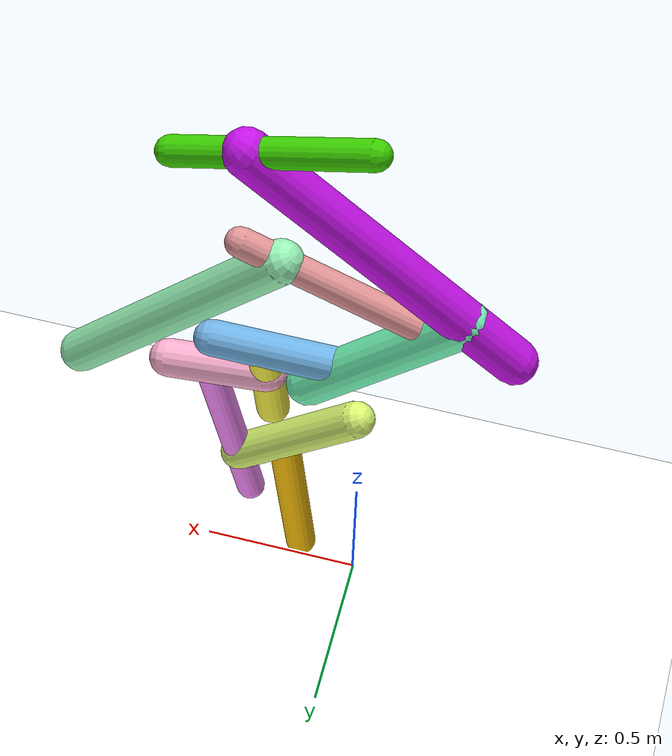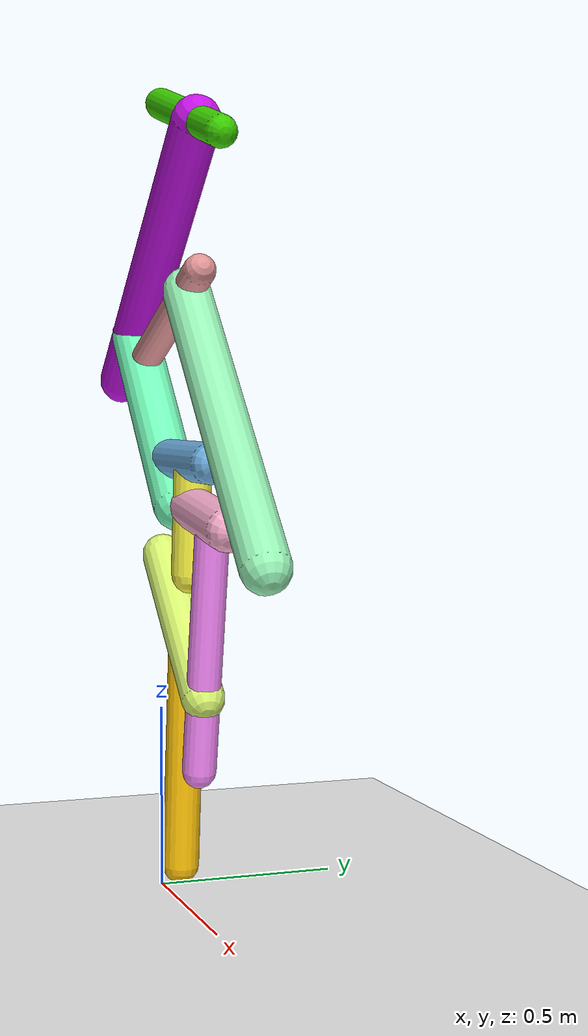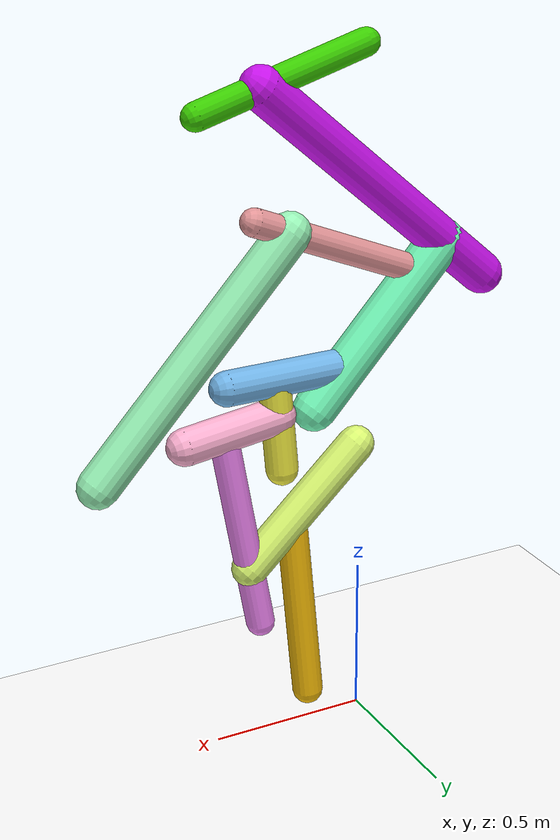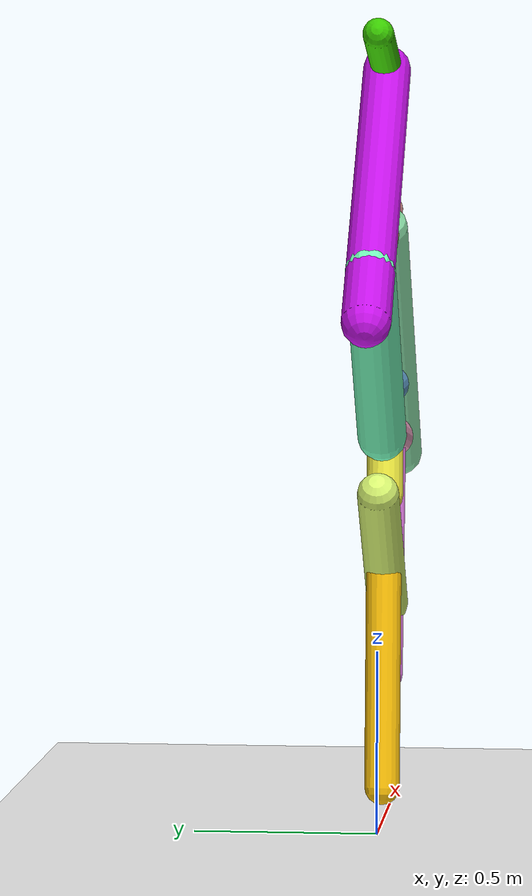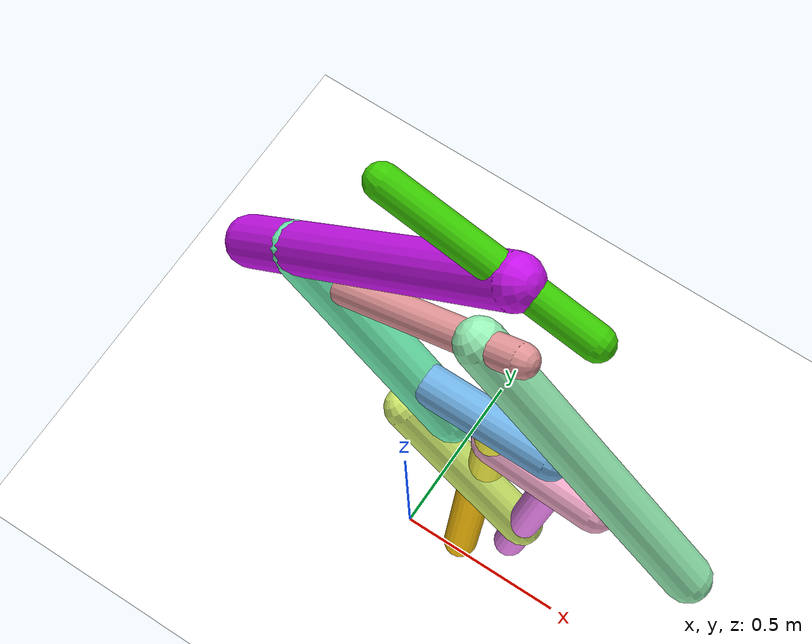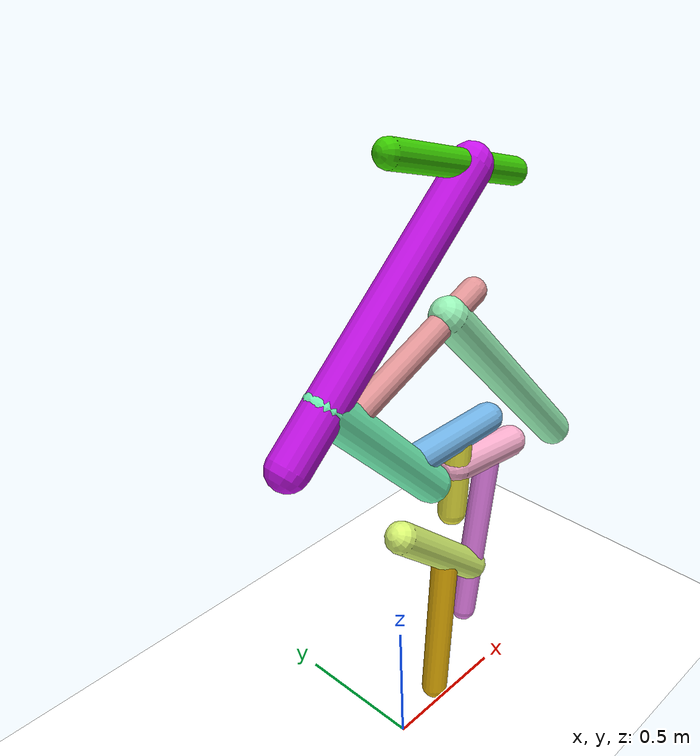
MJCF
<mujoco model="morphology">
  <option timestep="0.01"/>
  <default>
    <default class="/"/>
    <default class="0/"/>
    <default class="0/1/"/>
    <default class="0/1/2/"/>
    <default class="0/1/2/3/"/>
    <default class="0/1/2/3/4/"/>
    <default class="0/1/2/5/"/>
    <default class="0/1/2/5/6/"/>
    <default class="0/1/2/5/6/7/"/>
    <default class="0/1/2/5/6/7/8/"/>
    <default class="0/1/2/5/6/7/8/9/"/>
    <default class="0/1/2/5/6/7/8/9/10/"/>
  </default>
  <asset>
    <texture name="texplane" type="2d" builtin="checker" rgb1="0.10000000000000001 0.20000000000000001 0.29999999999999999" rgb2="0.20000000000000001 0.29999999999999999 0.40000000000000002" width="300" height="300"/>
    <material name="MatPlane" class="/" texture="texplane" texrepeat="20 20" specular="1" shininess="1" reflectance="0.5"/>
  </asset>
  <worldbody>
    <light name="//unnamed_light_0" class="/" directional="true" pos="0 0 1.5" dir="0 0 -1.3" cutoff="100" exponent="1" diffuse="1 1 1" specular="0.10000000000000001 0.10000000000000001 0.10000000000000001"/>
    <geom name="ground" class="/" type="plane" size="15 15 0.5" material="MatPlane" rgba="1 1 1 1"/>
    <site name="body" class="/" size="9.9999999999999995e-07 9.9999999999999995e-07 9.9999999999999995e-07" pos="0 0 2.1706288814544679"/>
    <body pos="0 0 2.1706288814544679" name="0/">
      <joint name="0/rootx/" class="/" type="slide" axis="1 0 0" limited="false" stiffness="0" armature="0" damping="0"/>
      <joint name="0/rootz/" class="/" type="slide" axis="0 0 1" limited="false" stiffness="0" armature="0" damping="0"/>
      <joint name="0/rooty/" class="/" type="hinge" axis="0 1 0" limited="false" stiffness="0" armature="0" damping="0"/>
      <geom name="0/geom" class="0/" type="capsule" contype="1" conaffinity="1" condim="3" size="0.042302939764190535" rgba="0.2312411419009579 0.80379815796272114 0.0055044817277949409 1" friction="0.59999999999999998 0.10000000000000001 0.10000000000000001" fromto="0 0 0 0.5333587453363664 0 -0.15270529305018299"/>
      <site name="0/end0" class="0/" size="0.0050000000000000001" pos="0.5333587453363664 0 -0.15270529305018299"/>
      <site name="0/attach1" class="0/" size="9.9999999999999995e-07 9.9999999999999995e-07 9.9999999999999995e-07" pos="0.33110781970767528 0 -0.094799076759827919"/>
      <body pos="0.33110781970767528 0 -0.094799076759827919" name="0/1/">
        <joint name="0/1/joint/" class="0/" type="hinge" axis="0 1 0" limited="true" range="-51.10454451608696 51.10454451608696"/>
        <geom name="0/1/geom" class="0/1/" type="capsule" contype="1" conaffinity="1" condim="3" size="0.065882488798187866" rgba="0.78354116724616019 0.07225179514251312 0.9204158899743774 1" friction="0.59999999999999998 0.10000000000000001 0.10000000000000001" fromto="0 0 0 -0.74921872616977325 0 -0.65853067485841876"/>
        <site name="0/1/end1" class="0/1/" size="0.0050000000000000001" pos="-0.74921872616977325 0 -0.65853067485841876"/>
        <site name="0/1/attach2" class="0/1/" size="9.9999999999999995e-07 9.9999999999999995e-07 9.9999999999999995e-07" pos="-0.60357958114642996 0 -0.53052020060301075"/>
        <body pos="-0.60357958114642996 0 -0.53052020060301075" name="0/1/2/">
          <joint name="0/1/2/joint/" class="0/1/" type="hinge" axis="0 1 0" limited="true" range="-63.788765269946936 63.788765269946936"/>
          <geom name="0/1/2/geom" class="0/1/2/" type="capsule" contype="1" conaffinity="1" condim="3" size="0.067356758846727718" rgba="0.45707242081565225 0.98392458418851481 0.7320796523043005 1" friction="0.59999999999999998 0.10000000000000001 0.10000000000000001" fromto="0 0 0 0.43341178101673461 0 -0.47190508183494434"/>
          <site name="0/1/2/end2" class="0/1/2/" size="0.0050000000000000001" pos="0.43341178101673461 0 -0.47190508183494434"/>
          <site name="0/1/2/attach3" class="0/1/2/" size="9.9999999999999995e-07 9.9999999999999995e-07 9.9999999999999995e-07" pos="0.07889415055760457 0 -0.085901104228976385"/>
          <body pos="0.07889415055760457 0 -0.085901104228976385" name="0/1/2/3/">
            <joint name="0/1/2/3/joint/" class="0/1/2/" type="hinge" axis="0 1 0" limited="true" range="-48.135554633565462 48.135554633565462"/>
            <geom name="0/1/2/3/geom" class="0/1/2/3/" type="capsule" contype="1" conaffinity="1" condim="3" size="0.043219157477671688" rgba="0.88676191962701023 0.58538895768818555 0.59252588427906483 1" friction="0.59999999999999998 0.10000000000000001 0.10000000000000001" fromto="0 0 0 0.54991188114901157 0 0.23121503354915074"/>
            <site name="0/1/2/3/end3" class="0/1/2/3/" size="0.0050000000000000001" pos="0.54991188114901157 0 0.23121503354915074"/>
            <site name="0/1/2/3/attach4" class="0/1/2/3/" size="9.9999999999999995e-07 9.9999999999999995e-07 9.9999999999999995e-07" pos="0.43615760111360352 0 0.18338609844814807"/>
            <body pos="0.43615760111360352 0 0.18338609844814807" name="0/1/2/3/4/">
              <joint name="0/1/2/3/4/joint/" class="0/1/2/3/" type="hinge" axis="0 1 0" limited="true" range="-58.95764488459217 58.95764488459217"/>
              <geom name="0/1/2/3/4/geom" class="0/1/2/3/4/" type="capsule" contype="1" conaffinity="1" condim="3" size="0.063988599359958834" rgba="0.59488425835738179 0.95556534725153985 0.71590361091970411 1" friction="0.59999999999999998 0.10000000000000001 0.10000000000000001" fromto="0 0 0 0.62383353961263133 0 -0.67441937271347741"/>
              <site name="0/1/2/3/4/end4" class="0/1/2/3/4/" size="0.0050000000000000001" pos="0.62383353961263133 0 -0.67441937271347741"/>
            </body>
          </body>
          <site name="0/1/2/attach5" class="0/1/2/" size="9.9999999999999995e-07 9.9999999999999995e-07 9.9999999999999995e-07" pos="0.31927180849728232 0 -0.34762781150769706"/>
          <body pos="0.31927180849728232 0 -0.34762781150769706" name="0/1/2/5/">
            <geom name="0/1/2/5/geom" class="0/1/2/5/" type="capsule" contype="1" conaffinity="1" condim="3" size="0.054160388987187079" rgba="0.44159891832526876 0.70177025446949259 0.90273150038461891 1" friction="0.59999999999999998 0.10000000000000001 0.10000000000000001" fromto="0 0 0 0.40461911384091342 0 -0.00070392377413885932"/>
            <site name="0/1/2/5/end5" class="0/1/2/5/" size="0.0050000000000000001" pos="0.40461911384091342 0 -0.00070392377413885932"/>
            <site name="0/1/2/5/attach6" class="0/1/2/5/" size="9.9999999999999995e-07 9.9999999999999995e-07 9.9999999999999995e-07" pos="0.24983636239627549 0 -0.00043464519870471625"/>
            <body pos="0.24983636239627549 0 -0.00043464519870471625" name="0/1/2/5/6/">
              <geom name="0/1/2/5/6/geom" class="0/1/2/5/6/" type="capsule" contype="1" conaffinity="1" condim="3" size="0.050423712814383445" rgba="0.98276274505617078 0.96126405373855828 0.26688371786283438 1" friction="0.59999999999999998 0.10000000000000001 0.10000000000000001" fromto="0 0 0 -0.025929626290547625 0 -0.29838272687252976"/>
              <site name="0/1/2/5/6/end6" class="0/1/2/5/6/" size="0.0050000000000000001" pos="-0.025929626290547625 0 -0.29838272687252976"/>
              <site name="0/1/2/5/6/attach7" class="0/1/2/5/6/" size="9.9999999999999995e-07 9.9999999999999995e-07 9.9999999999999995e-07" pos="-0.010417451922435504 0 -0.11987784462643464"/>
              <body pos="-0.010417451922435504 0 -0.11987784462643464" name="0/1/2/5/6/7/">
                <geom name="0/1/2/5/6/7/geom" class="0/1/2/5/6/7/" type="capsule" contype="1" conaffinity="1" condim="3" size="0.057580969779699107" rgba="0.98446408520944539 0.68770280346451795 0.81425114170245438 1" friction="0.59999999999999998 0.10000000000000001 0.10000000000000001" fromto="0 0 0 0.30344279290443232 0 -0.038881672741565065"/>
                <site name="0/1/2/5/6/7/end7" class="0/1/2/5/6/7/" size="0.0050000000000000001" pos="0.30344279290443232 0 -0.038881672741565065"/>
                <site name="0/1/2/5/6/7/attach8" class="0/1/2/5/6/7/" size="9.9999999999999995e-07 9.9999999999999995e-07 9.9999999999999995e-07" pos="0.180548235719103 0 -0.023134566315134164"/>
                <body pos="0.180548235719103 0 -0.023134566315134164" name="0/1/2/5/6/7/8/">
                  <joint name="0/1/2/5/6/7/8/joint/" class="0/1/2/5/6/7/" type="hinge" axis="0 1 0" limited="true" range="-58.868831380600156 58.868831380600156"/>
                  <geom name="0/1/2/5/6/7/8/geom" class="0/1/2/5/6/7/8/" type="capsule" contype="1" conaffinity="1" condim="3" size="0.044850716465588289" rgba="0.97607628655577516 0.54317218978015025 0.98758007726618735 1" friction="0.59999999999999998 0.10000000000000001 0.10000000000000001" fromto="0 0 0 -0.11859882642282238 0 -0.66413043830471286"/>
                  <site name="0/1/2/5/6/7/8/end8" class="0/1/2/5/6/7/8/" size="0.0050000000000000001" pos="-0.11859882642282238 0 -0.66413043830471286"/>
                  <site name="0/1/2/5/6/7/8/attach9" class="0/1/2/5/6/7/8/" size="9.9999999999999995e-07 9.9999999999999995e-07 9.9999999999999995e-07" pos="-0.083524146821182324 0 -0.46771903154940953"/>
                  <body pos="-0.083524146821182324 0 -0.46771903154940953" name="0/1/2/5/6/7/8/9/">
                    <joint name="0/1/2/5/6/7/8/9/joint/" class="0/1/2/5/6/7/8/" type="hinge" axis="0 1 0" limited="true" range="-50.004700447327586 50.004700447327586"/>
                    <geom name="0/1/2/5/6/7/8/9/geom" class="0/1/2/5/6/7/8/9/" type="capsule" contype="1" conaffinity="1" condim="3" size="0.057225024655774566" rgba="0.8562368687657238 0.97462161175072448 0.44720557573943531 1" friction="0.59999999999999998 0.10000000000000001 0.10000000000000001" fromto="0 0 0 -0.36871140455088836 0 0.34317619379288544"/>
                    <site name="0/1/2/5/6/7/8/9/end9" class="0/1/2/5/6/7/8/9/" size="0.0050000000000000001" pos="-0.36871140455088836 0 0.34317619379288544"/>
                    <site name="0/1/2/5/6/7/8/9/attach10" class="0/1/2/5/6/7/8/9/" size="9.9999999999999995e-07 9.9999999999999995e-07 9.9999999999999995e-07" pos="-0.14413481219284299 0 0.13415271573072651"/>
                    <body pos="-0.14413481219284299 0 0.13415271573072651" name="0/1/2/5/6/7/8/9/10/">
                      <geom name="0/1/2/5/6/7/8/9/10/geom" class="0/1/2/5/6/7/8/9/10/" type="capsule" contype="1" conaffinity="1" condim="3" size="0.048668192982430497" rgba="0.99989124856801004 0.76694177636802807 0.035029783746836629 1" friction="0.59999999999999998 0.10000000000000001 0.10000000000000001" fromto="0 0 0 -0.058289505495782379 0 -0.62066845827165418"/>
                      <site name="0/1/2/5/6/7/8/9/10/end10" class="0/1/2/5/6/7/8/9/10/" size="0.0050000000000000001" pos="-0.058289505495782379 0 -0.62066845827165418"/>
                    </body>
                  </body>
                </body>
              </body>
            </body>
          </body>
        </body>
      </body>
      <camera name="0/side" class="0/" mode="trackcom" pos="0.40000000000000002 -4 0.20000000000000001" quat="0.70699999999999996 0.70699999999999996 0 0"/>
    </body>
  </worldbody>
  <actuator>
    <motor name="0/1/motor" class="0/1/" ctrllimited="true" ctrlrange="-1 1" gear="52" joint="0/1/joint/"/>
    <motor name="0/1/2/motor" class="0/1/2/" ctrllimited="true" ctrlrange="-1 1" gear="65" joint="0/1/2/joint/"/>
    <motor name="0/1/2/3/motor" class="0/1/2/3/" ctrllimited="true" ctrlrange="-1 1" gear="61" joint="0/1/2/3/joint/"/>
    <motor name="0/1/2/3/4/motor" class="0/1/2/3/4/" ctrllimited="true" ctrlrange="-1 1" gear="53" joint="0/1/2/3/4/joint/"/>
    <motor name="0/1/2/5/6/7/8/motor" class="0/1/2/5/6/7/8/" ctrllimited="true" ctrlrange="-1 1" gear="85" joint="0/1/2/5/6/7/8/joint/"/>
    <motor name="0/1/2/5/6/7/8/9/motor" class="0/1/2/5/6/7/8/9/" ctrllimited="true" ctrlrange="-1 1" gear="66" joint="0/1/2/5/6/7/8/9/joint/"/>
  </actuator>
  <sensor>
    <subtreelinvel name="velocity" body="0/"/>
  </sensor>
</mujoco>
